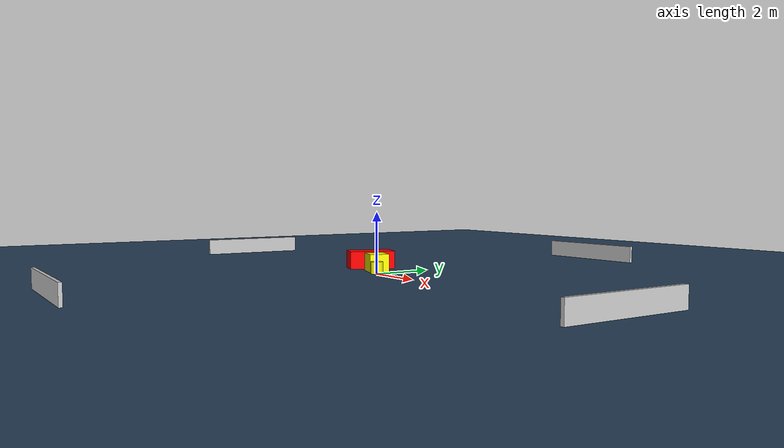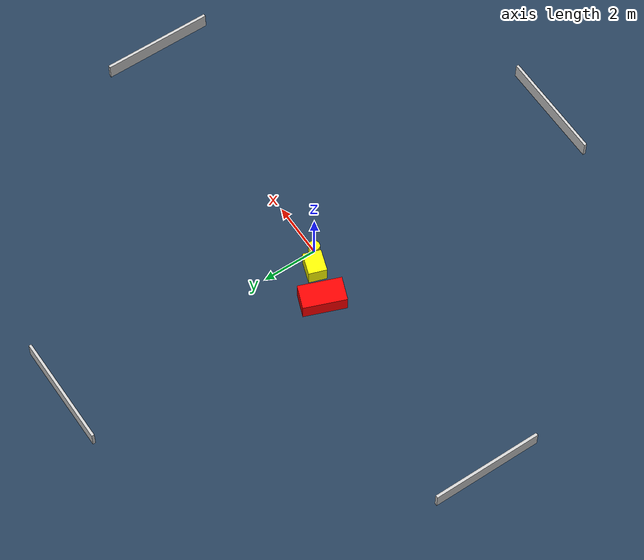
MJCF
<?xml version="1.0" ?>
<mujoco model="generated_environment">
  <option timestep="0.01" integrator="RK4" cone="elliptic"/>
  <default>
    <geom density="1"/>
  </default>
  <asset>
    <texture builtin="gradient" height="3072" name="skybox" rgb1="0.3 0.5 0.7" rgb2="0 0 0" type="skybox" width="512"/>
    <texture builtin="checker" height="300" name="groundplane" rgb1="0.2 0.3 0.4" rgb2="0.1 0.2 0.3" type="2d" width="300"/>
    <material name="groundplane" reflectance="0.2" texrepeat="5 5" texture="groundplane"/>
  </asset>
  <worldbody>
    <light dir="0 0 -1" directional="true" pos="0 0 1.5"/>
    <geom condim="3" friction="0.5 0.005 0.001" material="groundplane" name="floor" pos="0 0 0" size="0 0 0.05" type="plane"/>
    <body name="walls">
      <geom name="wall_1" condim="4" pos="-10.0 0.0 0.3" rgba="0.800000011920929 0.800000011920929 0.800000011920929 1.0" size="0.05 2.0 0.3" type="box"/>
      <geom name="wall_2" condim="4" pos="10.0 0.0 0.3" rgba="0.800000011920929 0.800000011920929 0.800000011920929 1.0" size="0.05 2.0 0.3" type="box"/>
      <geom name="wall_3" condim="4" pos="0.0 -10.0 0.3" rgba="0.800000011920929 0.800000011920929 0.800000011920929 1.0" size="2.0 0.05 0.3" type="box"/>
      <geom name="wall_4" condim="4" pos="0.0 10.0 0.3" rgba="0.800000011920929 0.800000011920929 0.800000011920929 1.0" size="2.0 0.05 0.3" type="box"/>
    </body>
    <body name="robot">
      <joint name="joint_x" type="slide" pos="0 0 0" axis="1 0 0"/>
      <joint name="joint_y" type="slide" pos="0 0 0" axis="0 1 0"/>
      <geom name="robot" type="cylinder" pos="0.0 0.0 0.2" size="0.2 0.2 0.0" mass="5.0" friction="1.0 0.005 0.0001" condim="4" rgba="1.0 1.0 0.0 1.0"/>
    </body>
    <body name="obstacle_1_movable">
      <geom name="obstacle_1_movable" condim="4" pos="-0.6334848364851332 0.40216143661940906 0.3" euler="0 0 341.11749850071686" friction="0.0 0.005 0.001" rgba="1.0 1.0 0.0 1.0" size="0.40471393811244555 0.3266884784383013 0.3" type="box" mass="0.1"/>
      <joint type="free"/>
    </body>
    <body name="obstacle_2_static">
      <geom name="obstacle_2_static" condim="4" pos="-1.7603071672938357 0.8538031723411472 0.3" euler="0 0 68.85512611317574" friction="0.0 0.005 0.001" rgba="1.0 0.0 0.0 1.0" size="0.7760629221243711 0.4392952046054684 0.3" type="box"/>
    </body>
  </worldbody>
  <actuator>
    <motor name="actuator_x" joint="joint_x" gear="1" ctrlrange="-1 1"/>
    <motor name="actuator_y" joint="joint_y" gear="1" ctrlrange="-1 1"/>
  </actuator>
</mujoco>
